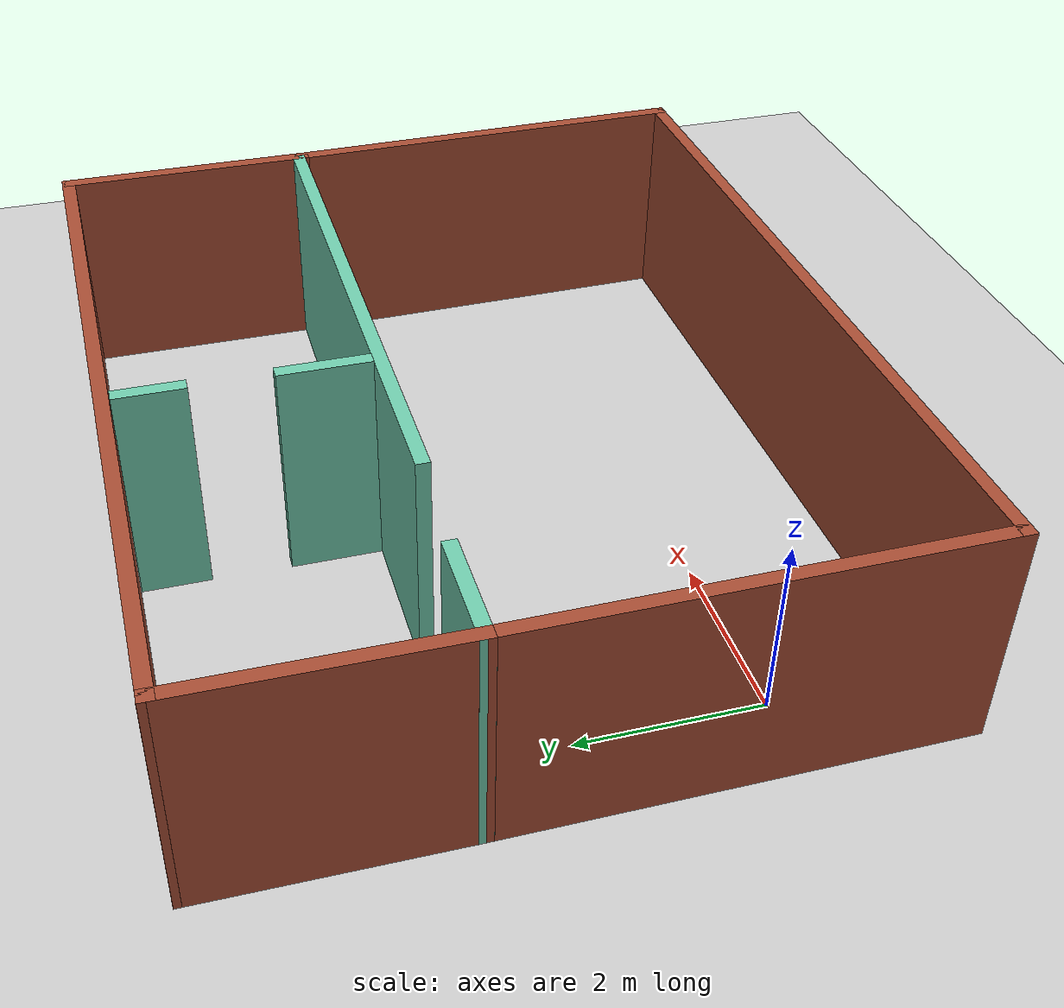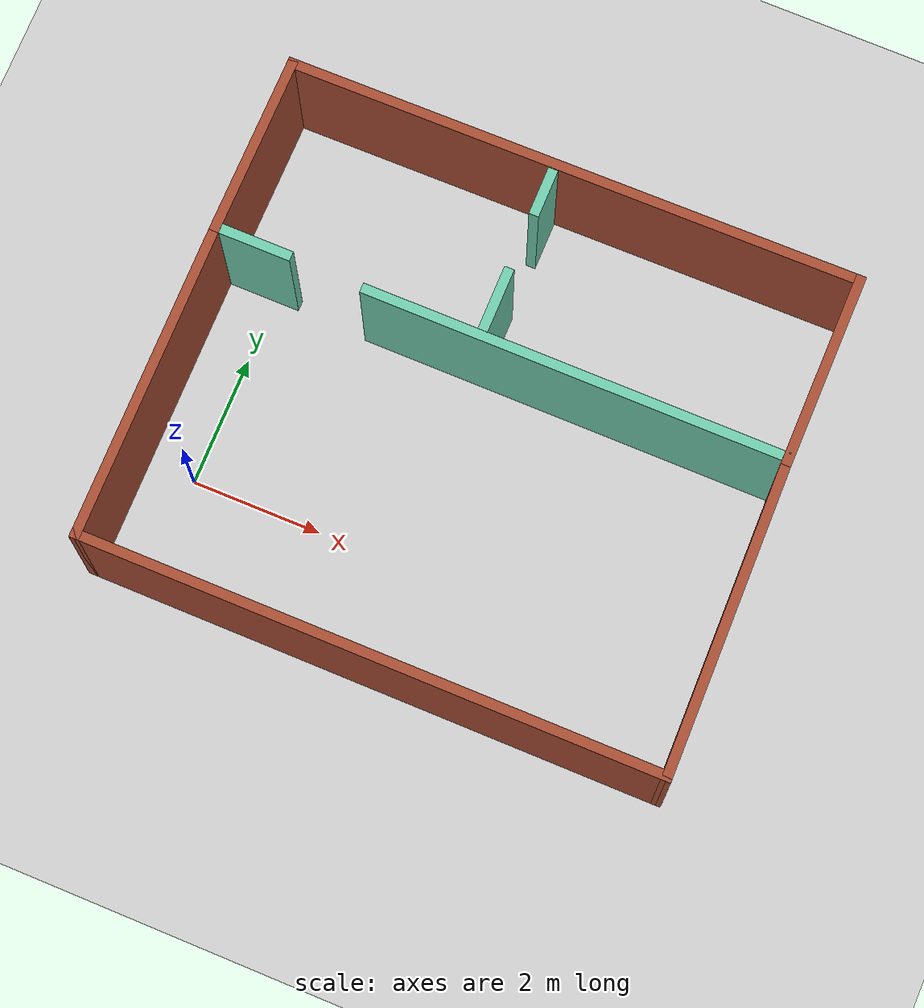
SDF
<sdf version="1.6">
 <world name="default">
  <plugin name="welcome" filename="libwelcome.so"/>
  <light name="sun" type="directional">
   <pose>0 0 10 0 -0 0</pose>
   <diffuse>0.8 0.8 0.8 1</diffuse>
   <specular>0.2 0.2 0.2 1</specular>
   <attenuation>
    <range>1000</range>
    <constant>0.9</constant>
    <linear>0.01</linear>
    <quadratic>0.001</quadratic>
   </attenuation>
   <direction>-0.5 0.1 -0.9</direction>
  </light>
  <model name="ground_plane">
   <static>1</static>
   <link name="link">
    <collision name="collision">
     <geometry><plane><normal>0 0 1</normal><size>100 100</size></plane></geometry>
     <surface>
      <contact><collide_bitmask>65535</collide_bitmask></contact>
      <friction><ode><mu>100</mu><mu2>50</mu2></ode></friction>
     </surface>
    </collision>
    <visual name="visual">
     <cast_shadows>0</cast_shadows>
     <geometry><plane><normal>0 0 1</normal><size>100 100</size></plane></geometry>
     <material>
      <script><uri>file://media/materials/scripts/gazebo.material</uri><name>Gazebo/Grey</name></script>
     </material>
    </visual>
   </link>
  </model>
  <gravity>0 0 -9.8</gravity>
  <magnetic_field>6e-06 2.3e-05 -4.2e-05</magnetic_field>
  <atmosphere type="adiabatic"/>
  <physics name="default_physics" default="0" type="ode">
   <max_step_size>0.001</max_step_size>
   <real_time_factor>1</real_time_factor>
   <real_time_update_rate>1000</real_time_update_rate>
  </physics>
  <scene><ambient>0.4 0.4 0.4 1</ambient><background>0.7 0.7 0.7 1</background><shadows>1</shadows></scene>
  <spherical_coordinates>
   <surface_model>EARTH_WGS84</surface_model>
   <latitude_deg>0</latitude_deg>
   <longitude_deg>0</longitude_deg>
   <elevation>0</elevation>
   <heading_deg>0</heading_deg>
  </spherical_coordinates>
  <model name="Gazebo_Building">
   <pose>3.62496 2.04334 0 0 -0 0</pose>
   <link name="Wall_20">
    <collision name="Wall_20_Collision">
     <geometry><box><size>8.88603 0.15 2.5</size></box></geometry>
     <pose>0 0 1.25 0 -0 0</pose>
    </collision>
    <visual name="Wall_20_Visual">
     <pose>0 0 1.25 0 -0 0</pose>
     <geometry><box><size>8.88603 0.15 2.5</size></box></geometry>
     <material>
      <script><uri>file://media/materials/scripts/gazebo.material</uri><name>Gazebo/Bricks</name></script>
      <ambient>0.996078 0.47451 0.0196078 1</ambient>
     </material>
     <meta><layer>0</layer></meta>
    </visual>
    <pose>-0.02841 3.76935 0 0 0 -3.13305</pose>
   </link>
   <link name="Wall_21">
    <collision name="Wall_21_Collision">
     <geometry><box><size>2.83816 0.15 2.5</size></box></geometry>
     <pose>0 0 1.25 0 -0 0</pose>
    </collision>
    <visual name="Wall_21_Visual">
     <pose>0 0 1.25 0 -0 0</pose>
     <geometry><box><size>2.83816 0.15 2.5</size></box></geometry>
     <material>
      <script><uri>file://media/materials/scripts/gazebo.material</uri><name>Gazebo/Bricks</name></script>
      <ambient>0.996078 0.47451 0.0196078 1</ambient>
     </material>
     <meta><layer>0</layer></meta>
    </visual>
    <pose>-4.41076 2.38803 0 0 0 -1.58159</pose>
   </link>
   <link name="Wall_22">
    <collision name="Wall_22_Collision">
     <geometry><box><size>1.25 0.15 2.5</size></box></geometry>
     <pose>0 0 1.2495 0 -0 0</pose>
    </collision>
    <visual name="Wall_22_Visual">
     <pose>0 0 1.2495 0 -0 0</pose>
     <geometry><box><size>1.25 0.15 2.5</size></box></geometry>
     <material>
      <script><uri>file://media/materials/scripts/gazebo.material</uri><name>Gazebo/Grey</name></script>
      <ambient>0.435294 0.796078 0.67451 1</ambient>
     </material>
     <meta><layer>0</layer></meta>
    </visual>
    <pose>-3.87526 1.04403 0 0 -0 0</pose>
   </link>
   <link name="Wall_24">
    <collision name="Wall_24_Collision">
     <geometry><box><size>1 0.15 2.5</size></box></geometry>
     <pose>0 0 1.25 0 -0 0</pose>
    </collision>
    <visual name="Wall_24_Visual">
     <pose>0 0 1.25 0 -0 0</pose>
     <geometry><box><size>1 0.15 2.5</size></box></geometry>
     <material>
      <script><uri>file://media/materials/scripts/gazebo.material</uri><name>Gazebo/Grey</name></script>
      <ambient>0.435294 0.796078 0.67451 1</ambient>
     </material>
     <meta><layer>0</layer></meta>
    </visual>
    <pose>-0.322639 1.5729 0 0 -0 1.5708</pose>
   </link>
   <link name="Wall_26">
    <collision name="Wall_26_Collision">
     <geometry><box><size>0.75 0.15 2.5</size></box></geometry>
     <pose>0 0 1.25 0 -0 0</pose>
    </collision>
    <visual name="Wall_26_Visual">
     <pose>0 0 1.25 0 -0 0</pose>
     <geometry><box><size>0.75 0.15 2.5</size></box></geometry>
     <material>
      <script><uri>file://media/materials/scripts/gazebo.material</uri><name>Gazebo/Grey</name></script>
      <ambient>0.435294 0.796078 0.67451 1</ambient>
     </material>
     <meta><layer>0</layer></meta>
    </visual>
    <pose>-0.304263 3.30803 0 0 -0 1.5708</pose>
   </link>
   <link name="Wall_28">
    <collision name="Wall_28_Collision">
     <geometry><box><size>3 0.15 2.5</size></box></geometry>
     <pose>0 0 1.25 0 -0 0</pose>
    </collision>
    <visual name="Wall_28_Visual">
     <pose>0 0 1.25 0 -0 0</pose>
     <geometry><box><size>3 0.15 2.5</size></box></geometry>
     <material>
      <script><uri>file://media/materials/scripts/gazebo.material</uri><name>Gazebo/Bricks</name></script>
      <ambient>0.996078 0.47451 0.0196078 1</ambient>
     </material>
     <meta><layer>0</layer></meta>
    </visual>
    <pose>4.33944 2.38166 0 0 -0 1.5708</pose>
   </link>
   <link name="Wall_32">
    <collision name="Wall_32_Collision">
     <geometry><box><size>5 0.15 2.5</size></box></geometry>
     <pose>0 0 1.25 0 -0 0</pose>
    </collision>
    <visual name="Wall_32_Visual">
     <pose>0 0 1.25 0 -0 0</pose>
     <geometry><box><size>5 0.15 2.5</size></box></geometry>
     <material>
      <script><uri>file://media/materials/scripts/gazebo.material</uri><name>Gazebo/Bricks</name></script>
      <ambient>0.435294 0.796078 0.67451 1</ambient>
     </material>
     <meta><layer>0</layer></meta>
    </visual>
    <pose>-4.42526 -1.38097 0 0 0 -1.5708</pose>
   </link>
   <link name="Wall_36">
    <collision name="Wall_36_Collision">
     <geometry><box><size>6.5 0.15 2.5</size></box></geometry>
     <pose>0 0 1.25 0 -0 0</pose>
    </collision>
    <visual name="Wall_36_Visual">
     <pose>0 0 1.25 0 -0 0</pose>
     <geometry><box><size>6.5 0.15 2.5</size></box></geometry>
     <material>
      <script><uri>file://media/materials/scripts/gazebo.material</uri><name>Gazebo/Grey</name></script>
      <ambient>0.435294 0.796078 0.67451 1</ambient>
     </material>
     <meta><layer>0</layer></meta>
    </visual>
    <pose>1.09813 1.0022 0 0 -0 0</pose>
   </link>
   <link name="Wall_39">
    <collision name="Wall_39_Collision">
     <geometry><box><size>9 0.15 2.5</size></box></geometry>
     <pose>0 0 1.25 0 -0 0</pose>
    </collision>
    <visual name="Wall_39_Visual">
     <pose>0 0 1.25 0 -0 0</pose>
     <geometry><box><size>9 0.15 2.5</size></box></geometry>
     <material>
      <script><uri>file://media/materials/scripts/gazebo.material</uri><name>Gazebo/Bricks</name></script>
      <ambient>0.435294 0.796078 0.67451 1</ambient>
     </material>
     <meta><layer>0</layer></meta>
    </visual>
    <pose>-0.000263 -3.80597 0 0 -0 0</pose>
   </link>
   <link name="Wall_40">
    <collision name="Wall_40_Collision">
     <geometry><box><size>4.9134 0.15 2.5</size></box></geometry>
     <pose>0 0 1.25 0 -0 0</pose>
    </collision>
    <visual name="Wall_40_Visual">
     <pose>0 0 1.25 0 -0 0</pose>
     <geometry><box><size>4.9134 0.15 2.5</size></box></geometry>
     <material>
      <script><uri>file://media/materials/scripts/gazebo.material</uri><name>Gazebo/Bricks</name></script>
      <ambient>0.435294 0.796078 0.67451 1</ambient>
     </material>
     <meta><layer>0</layer></meta>
    </visual>
    <pose>4.38209 -1.42465 0 0 -0 1.5887</pose>
   </link>
   <static>1</static>
  </model>
 </world>
</sdf>
